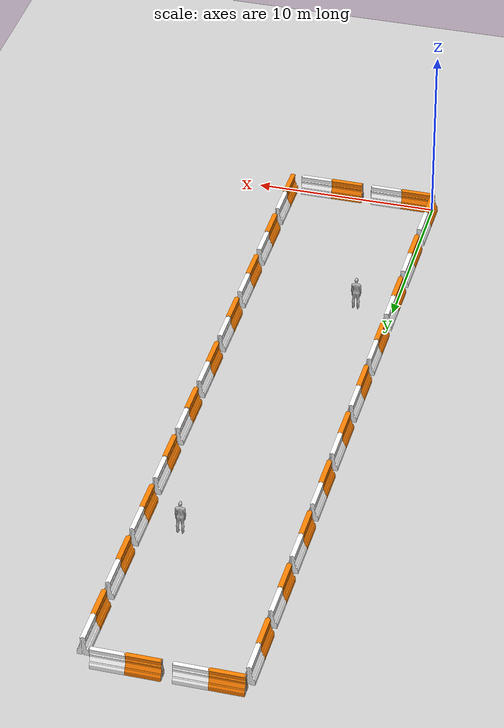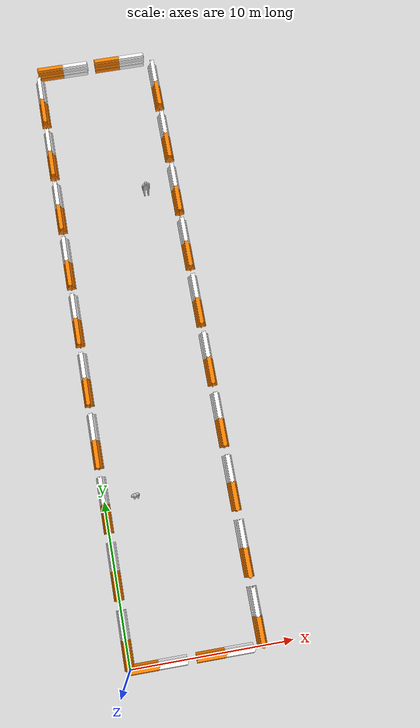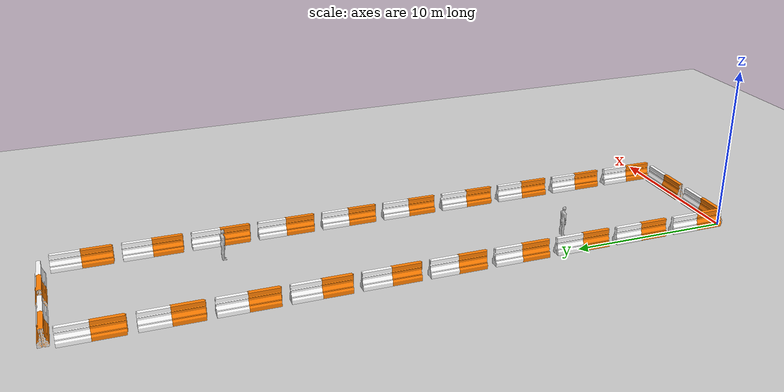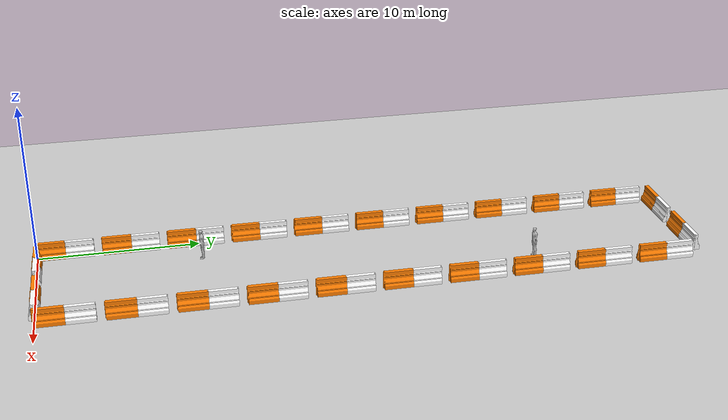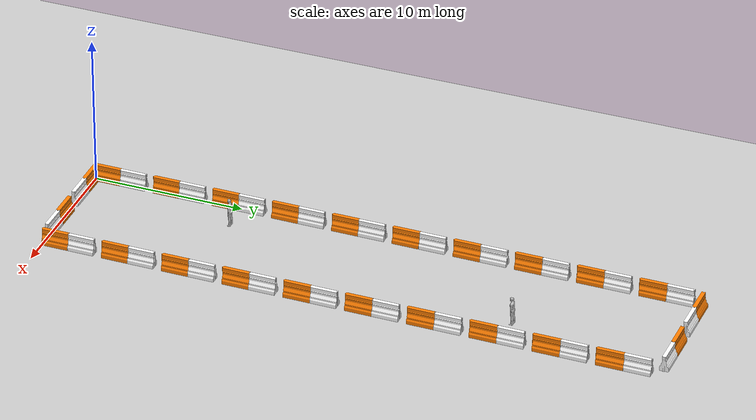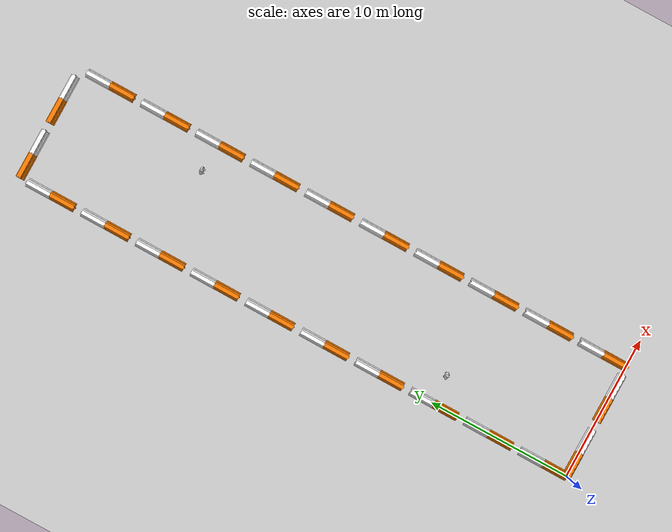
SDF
<sdf version="1.7">
 <world name="default">
  <light name="sun" type="directional">
   <pose>0 0 10 0 -0 0</pose>
   <diffuse>0.8 0.8 0.8 1</diffuse>
   <specular>0.2 0.2 0.2 1</specular>
   <attenuation>
    <range>1000</range>
    <constant>0.9</constant>
    <linear>0.01</linear>
    <quadratic>0.001</quadratic>
   </attenuation>
   <direction>-0.5 0.1 -0.9</direction>
   <spot><inner_angle>0</inner_angle><outer_angle>0</outer_angle><falloff>0</falloff></spot>
  </light>
  <model name="ground_plane">
   <static>1</static>
   <link name="link">
    <collision name="collision">
     <geometry><plane><normal>0 0 1</normal><size>100 100</size></plane></geometry>
     <surface>
      <contact><collide_bitmask>65535</collide_bitmask></contact>
      <friction><ode><mu>100</mu><mu2>50</mu2></ode></friction>
     </surface>
    </collision>
    <visual name="visual">
     <cast_shadows>0</cast_shadows>
     <geometry><plane><normal>0 0 1</normal><size>100 100</size></plane></geometry>
     <material>
      <script><uri>file://media/materials/scripts/gazebo.material</uri><name>Gazebo/Grey</name></script>
     </material>
    </visual>
   </link>
  </model>
  <gravity>0 0 -9.8</gravity>
  <magnetic_field>6e-06 2.3e-05 -4.2e-05</magnetic_field>
  <atmosphere type="adiabatic"/>
  <physics type="ode">
   <max_step_size>0.001</max_step_size>
   <real_time_factor>1</real_time_factor>
   <real_time_update_rate>1000</real_time_update_rate>
  </physics>
  <scene><ambient>0.4 0.4 0.4 1</ambient><background>0.7 0.7 0.7 1</background><shadows>1</shadows></scene>
  <spherical_coordinates>
   <surface_model>EARTH_WGS84</surface_model>
   <latitude_deg>0</latitude_deg>
   <longitude_deg>0</longitude_deg>
   <elevation>0</elevation>
   <heading_deg>0</heading_deg>
  </spherical_coordinates>
  <model name="object_0">
   <static>1</static>
   <link name="link">
    <visual name="visual">
     <geometry>
      <mesh><uri>model://drc_practice_orange_jersey_barrier/meshes/jersey_barrier.dae</uri></mesh>
     </geometry>
    </visual>
    <collision name="collision">
     <geometry>
      <mesh><uri>model://drc_practice_orange_jersey_barrier/meshes/jersey_barrier.dae</uri></mesh>
     </geometry>
    </collision>
   </link>
   <pose>0 0.87 0 0 -0 0</pose>
  </model>
  <model name="object_1">
   <static>1</static>
   <link name="link">
    <visual name="visual">
     <geometry>
      <mesh><uri>model://drc_practice_white_jersey_barrier/meshes/jersey_barrier.dae</uri></mesh>
     </geometry>
    </visual>
    <collision name="collision">
     <geometry>
      <mesh><uri>model://drc_practice_white_jersey_barrier/meshes/jersey_barrier.dae</uri></mesh>
     </geometry>
    </collision>
   </link>
   <pose>0 2.61 0 0 -0 0</pose>
  </model>
  <model name="object_3">
   <static>1</static>
   <link name="link">
    <visual name="visual">
     <geometry>
      <mesh><uri>model://drc_practice_orange_jersey_barrier/meshes/jersey_barrier.dae</uri></mesh>
     </geometry>
    </visual>
    <collision name="collision">
     <geometry>
      <mesh><uri>model://drc_practice_orange_jersey_barrier/meshes/jersey_barrier.dae</uri></mesh>
     </geometry>
    </collision>
   </link>
   <pose>0 4.91 0 0 -0 0</pose>
  </model>
  <model name="object_4">
   <static>1</static>
   <link name="link">
    <visual name="visual">
     <geometry>
      <mesh><uri>model://drc_practice_white_jersey_barrier/meshes/jersey_barrier.dae</uri></mesh>
     </geometry>
    </visual>
    <collision name="collision">
     <geometry>
      <mesh><uri>model://drc_practice_white_jersey_barrier/meshes/jersey_barrier.dae</uri></mesh>
     </geometry>
    </collision>
   </link>
   <pose>0 6.65 0 0 -0 0</pose>
  </model>
  <model name="object_6">
   <static>1</static>
   <link name="link">
    <visual name="visual">
     <geometry>
      <mesh><uri>model://drc_practice_orange_jersey_barrier/meshes/jersey_barrier.dae</uri></mesh>
     </geometry>
    </visual>
    <collision name="collision">
     <geometry>
      <mesh><uri>model://drc_practice_orange_jersey_barrier/meshes/jersey_barrier.dae</uri></mesh>
     </geometry>
    </collision>
   </link>
   <pose>0 8.95 0 0 -0 0</pose>
  </model>
  <model name="object_7">
   <static>1</static>
   <link name="link">
    <visual name="visual">
     <geometry>
      <mesh><uri>model://drc_practice_white_jersey_barrier/meshes/jersey_barrier.dae</uri></mesh>
     </geometry>
    </visual>
    <collision name="collision">
     <geometry>
      <mesh><uri>model://drc_practice_white_jersey_barrier/meshes/jersey_barrier.dae</uri></mesh>
     </geometry>
    </collision>
   </link>
   <pose>0 10.69 0 0 -0 0</pose>
  </model>
  <model name="object_9">
   <static>1</static>
   <link name="link">
    <visual name="visual">
     <geometry>
      <mesh><uri>model://drc_practice_orange_jersey_barrier/meshes/jersey_barrier.dae</uri></mesh>
     </geometry>
    </visual>
    <collision name="collision">
     <geometry>
      <mesh><uri>model://drc_practice_orange_jersey_barrier/meshes/jersey_barrier.dae</uri></mesh>
     </geometry>
    </collision>
   </link>
   <pose>0 12.99 0 0 -0 0</pose>
  </model>
  <model name="object_10">
   <static>1</static>
   <link name="link">
    <visual name="visual">
     <geometry>
      <mesh><uri>model://drc_practice_white_jersey_barrier/meshes/jersey_barrier.dae</uri></mesh>
     </geometry>
    </visual>
    <collision name="collision">
     <geometry>
      <mesh><uri>model://drc_practice_white_jersey_barrier/meshes/jersey_barrier.dae</uri></mesh>
     </geometry>
    </collision>
   </link>
   <pose>0 14.73 0 0 -0 0</pose>
  </model>
  <model name="object_12">
   <static>1</static>
   <link name="link">
    <visual name="visual">
     <geometry>
      <mesh><uri>model://drc_practice_orange_jersey_barrier/meshes/jersey_barrier.dae</uri></mesh>
     </geometry>
    </visual>
    <collision name="collision">
     <geometry>
      <mesh><uri>model://drc_practice_orange_jersey_barrier/meshes/jersey_barrier.dae</uri></mesh>
     </geometry>
    </collision>
   </link>
   <pose>0 17.03 0 0 -0 0</pose>
  </model>
  <model name="object_13">
   <static>1</static>
   <link name="link">
    <visual name="visual">
     <geometry>
      <mesh><uri>model://drc_practice_white_jersey_barrier/meshes/jersey_barrier.dae</uri></mesh>
     </geometry>
    </visual>
    <collision name="collision">
     <geometry>
      <mesh><uri>model://drc_practice_white_jersey_barrier/meshes/jersey_barrier.dae</uri></mesh>
     </geometry>
    </collision>
   </link>
   <pose>0 18.77 0 0 -0 0</pose>
  </model>
  <model name="object_15">
   <static>1</static>
   <link name="link">
    <visual name="visual">
     <geometry>
      <mesh><uri>model://drc_practice_orange_jersey_barrier/meshes/jersey_barrier.dae</uri></mesh>
     </geometry>
    </visual>
    <collision name="collision">
     <geometry>
      <mesh><uri>model://drc_practice_orange_jersey_barrier/meshes/jersey_barrier.dae</uri></mesh>
     </geometry>
    </collision>
   </link>
   <pose>0 21.07 0 0 -0 0</pose>
  </model>
  <model name="object_16">
   <static>1</static>
   <link name="link">
    <visual name="visual">
     <geometry>
      <mesh><uri>model://drc_practice_white_jersey_barrier/meshes/jersey_barrier.dae</uri></mesh>
     </geometry>
    </visual>
    <collision name="collision">
     <geometry>
      <mesh><uri>model://drc_practice_white_jersey_barrier/meshes/jersey_barrier.dae</uri></mesh>
     </geometry>
    </collision>
   </link>
   <pose>0 22.81 0 0 -0 0</pose>
  </model>
  <model name="object_18">
   <static>1</static>
   <link name="link">
    <visual name="visual">
     <geometry>
      <mesh><uri>model://drc_practice_orange_jersey_barrier/meshes/jersey_barrier.dae</uri></mesh>
     </geometry>
    </visual>
    <collision name="collision">
     <geometry>
      <mesh><uri>model://drc_practice_orange_jersey_barrier/meshes/jersey_barrier.dae</uri></mesh>
     </geometry>
    </collision>
   </link>
   <pose>0 25.11 0 0 -0 0</pose>
  </model>
  <model name="object_19">
   <static>1</static>
   <link name="link">
    <visual name="visual">
     <geometry>
      <mesh><uri>model://drc_practice_white_jersey_barrier/meshes/jersey_barrier.dae</uri></mesh>
     </geometry>
    </visual>
    <collision name="collision">
     <geometry>
      <mesh><uri>model://drc_practice_white_jersey_barrier/meshes/jersey_barrier.dae</uri></mesh>
     </geometry>
    </collision>
   </link>
   <pose>0 26.85 0 0 -0 0</pose>
  </model>
  <model name="object_21">
   <static>1</static>
   <link name="link">
    <visual name="visual">
     <geometry>
      <mesh><uri>model://drc_practice_orange_jersey_barrier/meshes/jersey_barrier.dae</uri></mesh>
     </geometry>
    </visual>
    <collision name="collision">
     <geometry>
      <mesh><uri>model://drc_practice_orange_jersey_barrier/meshes/jersey_barrier.dae</uri></mesh>
     </geometry>
    </collision>
   </link>
   <pose>0 29.15 0 0 -0 0</pose>
  </model>
  <model name="object_22">
   <static>1</static>
   <link name="link">
    <visual name="visual">
     <geometry>
      <mesh><uri>model://drc_practice_white_jersey_barrier/meshes/jersey_barrier.dae</uri></mesh>
     </geometry>
    </visual>
    <collision name="collision">
     <geometry>
      <mesh><uri>model://drc_practice_white_jersey_barrier/meshes/jersey_barrier.dae</uri></mesh>
     </geometry>
    </collision>
   </link>
   <pose>0 30.89 0 0 -0 0</pose>
  </model>
  <model name="object_24">
   <static>1</static>
   <link name="link">
    <visual name="visual">
     <geometry>
      <mesh><uri>model://drc_practice_orange_jersey_barrier/meshes/jersey_barrier.dae</uri></mesh>
     </geometry>
    </visual>
    <collision name="collision">
     <geometry>
      <mesh><uri>model://drc_practice_orange_jersey_barrier/meshes/jersey_barrier.dae</uri></mesh>
     </geometry>
    </collision>
   </link>
   <pose>0 33.19 0 0 -0 0</pose>
  </model>
  <model name="object_25">
   <static>1</static>
   <link name="link">
    <visual name="visual">
     <geometry>
      <mesh><uri>model://drc_practice_white_jersey_barrier/meshes/jersey_barrier.dae</uri></mesh>
     </geometry>
    </visual>
    <collision name="collision">
     <geometry>
      <mesh><uri>model://drc_practice_white_jersey_barrier/meshes/jersey_barrier.dae</uri></mesh>
     </geometry>
    </collision>
   </link>
   <pose>0 34.93 0 0 -0 0</pose>
  </model>
  <model name="object_27">
   <static>1</static>
   <link name="link">
    <visual name="visual">
     <geometry>
      <mesh><uri>model://drc_practice_orange_jersey_barrier/meshes/jersey_barrier.dae</uri></mesh>
     </geometry>
    </visual>
    <collision name="collision">
     <geometry>
      <mesh><uri>model://drc_practice_orange_jersey_barrier/meshes/jersey_barrier.dae</uri></mesh>
     </geometry>
    </collision>
   </link>
   <pose>0 37.23 0 0 -0 0</pose>
  </model>
  <model name="object_28">
   <static>1</static>
   <link name="link">
    <visual name="visual">
     <geometry>
      <mesh><uri>model://drc_practice_white_jersey_barrier/meshes/jersey_barrier.dae</uri></mesh>
     </geometry>
    </visual>
    <collision name="collision">
     <geometry>
      <mesh><uri>model://drc_practice_white_jersey_barrier/meshes/jersey_barrier.dae</uri></mesh>
     </geometry>
    </collision>
   </link>
   <pose>0 38.97 0 0 -0 0</pose>
  </model>
  <model name="object_30">
   <static>1</static>
   <link name="link">
    <visual name="visual">
     <geometry>
      <mesh><uri>model://drc_practice_orange_jersey_barrier/meshes/jersey_barrier.dae</uri></mesh>
     </geometry>
    </visual>
    <collision name="collision">
     <geometry>
      <mesh><uri>model://drc_practice_orange_jersey_barrier/meshes/jersey_barrier.dae</uri></mesh>
     </geometry>
    </collision>
   </link>
   <pose>8.08 0.87 0 0 -0 0</pose>
  </model>
  <model name="object_31">
   <static>1</static>
   <link name="link">
    <visual name="visual">
     <geometry>
      <mesh><uri>model://drc_practice_white_jersey_barrier/meshes/jersey_barrier.dae</uri></mesh>
     </geometry>
    </visual>
    <collision name="collision">
     <geometry>
      <mesh><uri>model://drc_practice_white_jersey_barrier/meshes/jersey_barrier.dae</uri></mesh>
     </geometry>
    </collision>
   </link>
   <pose>8.08 2.61 0 0 -0 0</pose>
  </model>
  <model name="object_33">
   <static>1</static>
   <link name="link">
    <visual name="visual">
     <geometry>
      <mesh><uri>model://drc_practice_orange_jersey_barrier/meshes/jersey_barrier.dae</uri></mesh>
     </geometry>
    </visual>
    <collision name="collision">
     <geometry>
      <mesh><uri>model://drc_practice_orange_jersey_barrier/meshes/jersey_barrier.dae</uri></mesh>
     </geometry>
    </collision>
   </link>
   <pose>8.08 4.91 0 0 -0 0</pose>
  </model>
  <model name="object_34">
   <static>1</static>
   <link name="link">
    <visual name="visual">
     <geometry>
      <mesh><uri>model://drc_practice_white_jersey_barrier/meshes/jersey_barrier.dae</uri></mesh>
     </geometry>
    </visual>
    <collision name="collision">
     <geometry>
      <mesh><uri>model://drc_practice_white_jersey_barrier/meshes/jersey_barrier.dae</uri></mesh>
     </geometry>
    </collision>
   </link>
   <pose>8.08 6.65 0 0 -0 0</pose>
  </model>
  <model name="object_36">
   <static>1</static>
   <link name="link">
    <visual name="visual">
     <geometry>
      <mesh><uri>model://drc_practice_orange_jersey_barrier/meshes/jersey_barrier.dae</uri></mesh>
     </geometry>
    </visual>
    <collision name="collision">
     <geometry>
      <mesh><uri>model://drc_practice_orange_jersey_barrier/meshes/jersey_barrier.dae</uri></mesh>
     </geometry>
    </collision>
   </link>
   <pose>8.08 8.95 0 0 -0 0</pose>
  </model>
  <model name="object_37">
   <static>1</static>
   <link name="link">
    <visual name="visual">
     <geometry>
      <mesh><uri>model://drc_practice_white_jersey_barrier/meshes/jersey_barrier.dae</uri></mesh>
     </geometry>
    </visual>
    <collision name="collision">
     <geometry>
      <mesh><uri>model://drc_practice_white_jersey_barrier/meshes/jersey_barrier.dae</uri></mesh>
     </geometry>
    </collision>
   </link>
   <pose>8.08 10.69 0 0 -0 0</pose>
  </model>
  <model name="object_39">
   <static>1</static>
   <link name="link">
    <visual name="visual">
     <geometry>
      <mesh><uri>model://drc_practice_orange_jersey_barrier/meshes/jersey_barrier.dae</uri></mesh>
     </geometry>
    </visual>
    <collision name="collision">
     <geometry>
      <mesh><uri>model://drc_practice_orange_jersey_barrier/meshes/jersey_barrier.dae</uri></mesh>
     </geometry>
    </collision>
   </link>
   <pose>8.08 12.99 0 0 -0 0</pose>
  </model>
  <model name="object_40">
   <static>1</static>
   <link name="link">
    <visual name="visual">
     <geometry>
      <mesh><uri>model://drc_practice_white_jersey_barrier/meshes/jersey_barrier.dae</uri></mesh>
     </geometry>
    </visual>
    <collision name="collision">
     <geometry>
      <mesh><uri>model://drc_practice_white_jersey_barrier/meshes/jersey_barrier.dae</uri></mesh>
     </geometry>
    </collision>
   </link>
   <pose>8.08 14.73 0 0 -0 0</pose>
  </model>
  <model name="object_42">
   <static>1</static>
   <link name="link">
    <visual name="visual">
     <geometry>
      <mesh><uri>model://drc_practice_orange_jersey_barrier/meshes/jersey_barrier.dae</uri></mesh>
     </geometry>
    </visual>
    <collision name="collision">
     <geometry>
      <mesh><uri>model://drc_practice_orange_jersey_barrier/meshes/jersey_barrier.dae</uri></mesh>
     </geometry>
    </collision>
   </link>
   <pose>8.08 17.03 0 0 -0 0</pose>
  </model>
  <model name="object_43">
   <static>1</static>
   <link name="link">
    <visual name="visual">
     <geometry>
      <mesh><uri>model://drc_practice_white_jersey_barrier/meshes/jersey_barrier.dae</uri></mesh>
     </geometry>
    </visual>
    <collision name="collision">
     <geometry>
      <mesh><uri>model://drc_practice_white_jersey_barrier/meshes/jersey_barrier.dae</uri></mesh>
     </geometry>
    </collision>
   </link>
   <pose>8.08 18.77 0 0 -0 0</pose>
  </model>
  <model name="object_45">
   <static>1</static>
   <link name="link">
    <visual name="visual">
     <geometry>
      <mesh><uri>model://drc_practice_orange_jersey_barrier/meshes/jersey_barrier.dae</uri></mesh>
     </geometry>
    </visual>
    <collision name="collision">
     <geometry>
      <mesh><uri>model://drc_practice_orange_jersey_barrier/meshes/jersey_barrier.dae</uri></mesh>
     </geometry>
    </collision>
   </link>
   <pose>8.08 21.07 0 0 -0 0</pose>
  </model>
  <model name="object_46">
   <static>1</static>
   <link name="link">
    <visual name="visual">
     <geometry>
      <mesh><uri>model://drc_practice_white_jersey_barrier/meshes/jersey_barrier.dae</uri></mesh>
     </geometry>
    </visual>
    <collision name="collision">
     <geometry>
      <mesh><uri>model://drc_practice_white_jersey_barrier/meshes/jersey_barrier.dae</uri></mesh>
     </geometry>
    </collision>
   </link>
   <pose>8.08 22.81 0 0 -0 0</pose>
  </model>
  <model name="object_48">
   <static>1</static>
   <link name="link">
    <visual name="visual">
     <geometry>
      <mesh><uri>model://drc_practice_orange_jersey_barrier/meshes/jersey_barrier.dae</uri></mesh>
     </geometry>
    </visual>
    <collision name="collision">
     <geometry>
      <mesh><uri>model://drc_practice_orange_jersey_barrier/meshes/jersey_barrier.dae</uri></mesh>
     </geometry>
    </collision>
   </link>
   <pose>8.08 25.11 0 0 -0 0</pose>
  </model>
  <model name="object_49">
   <static>1</static>
   <link name="link">
    <visual name="visual">
     <geometry>
      <mesh><uri>model://drc_practice_white_jersey_barrier/meshes/jersey_barrier.dae</uri></mesh>
     </geometry>
    </visual>
    <collision name="collision">
     <geometry>
      <mesh><uri>model://drc_practice_white_jersey_barrier/meshes/jersey_barrier.dae</uri></mesh>
     </geometry>
    </collision>
   </link>
   <pose>8.08 26.85 0 0 -0 0</pose>
  </model>
  <model name="object_51">
   <static>1</static>
   <link name="link">
    <visual name="visual">
     <geometry>
      <mesh><uri>model://drc_practice_orange_jersey_barrier/meshes/jersey_barrier.dae</uri></mesh>
     </geometry>
    </visual>
    <collision name="collision">
     <geometry>
      <mesh><uri>model://drc_practice_orange_jersey_barrier/meshes/jersey_barrier.dae</uri></mesh>
     </geometry>
    </collision>
   </link>
   <pose>8.08 29.15 0 0 -0 0</pose>
  </model>
  <model name="object_52">
   <static>1</static>
   <link name="link">
    <visual name="visual">
     <geometry>
      <mesh><uri>model://drc_practice_white_jersey_barrier/meshes/jersey_barrier.dae</uri></mesh>
     </geometry>
    </visual>
    <collision name="collision">
     <geometry>
      <mesh><uri>model://drc_practice_white_jersey_barrier/meshes/jersey_barrier.dae</uri></mesh>
     </geometry>
    </collision>
   </link>
   <pose>8.08 30.89 0 0 -0 0</pose>
  </model>
  <model name="object_54">
   <static>1</static>
   <link name="link">
    <visual name="visual">
     <geometry>
      <mesh><uri>model://drc_practice_orange_jersey_barrier/meshes/jersey_barrier.dae</uri></mesh>
     </geometry>
    </visual>
    <collision name="collision">
     <geometry>
      <mesh><uri>model://drc_practice_orange_jersey_barrier/meshes/jersey_barrier.dae</uri></mesh>
     </geometry>
    </collision>
   </link>
   <pose>8.08 33.19 0 0 -0 0</pose>
  </model>
  <model name="object_55">
   <static>1</static>
   <link name="link">
    <visual name="visual">
     <geometry>
      <mesh><uri>model://drc_practice_white_jersey_barrier/meshes/jersey_barrier.dae</uri></mesh>
     </geometry>
    </visual>
    <collision name="collision">
     <geometry>
      <mesh><uri>model://drc_practice_white_jersey_barrier/meshes/jersey_barrier.dae</uri></mesh>
     </geometry>
    </collision>
   </link>
   <pose>8.08 34.93 0 0 -0 0</pose>
  </model>
  <model name="object_57">
   <static>1</static>
   <link name="link">
    <visual name="visual">
     <geometry>
      <mesh><uri>model://drc_practice_orange_jersey_barrier/meshes/jersey_barrier.dae</uri></mesh>
     </geometry>
    </visual>
    <collision name="collision">
     <geometry>
      <mesh><uri>model://drc_practice_orange_jersey_barrier/meshes/jersey_barrier.dae</uri></mesh>
     </geometry>
    </collision>
   </link>
   <pose>8.08 37.23 0 0 -0 0</pose>
  </model>
  <model name="object_58">
   <static>1</static>
   <link name="link">
    <visual name="visual">
     <geometry>
      <mesh><uri>model://drc_practice_white_jersey_barrier/meshes/jersey_barrier.dae</uri></mesh>
     </geometry>
    </visual>
    <collision name="collision">
     <geometry>
      <mesh><uri>model://drc_practice_white_jersey_barrier/meshes/jersey_barrier.dae</uri></mesh>
     </geometry>
    </collision>
   </link>
   <pose>8.08 38.97 0 0 -0 0</pose>
  </model>
  <model name="object_60">
   <static>1</static>
   <link name="link">
    <visual name="visual">
     <geometry>
      <mesh><uri>model://drc_practice_orange_jersey_barrier/meshes/jersey_barrier.dae</uri></mesh>
     </geometry>
    </visual>
    <collision name="collision">
     <geometry>
      <mesh><uri>model://drc_practice_orange_jersey_barrier/meshes/jersey_barrier.dae</uri></mesh>
     </geometry>
    </collision>
   </link>
   <pose>0.87 0 0 0 -0 1.5708</pose>
  </model>
  <model name="object_61">
   <static>1</static>
   <link name="link">
    <visual name="visual">
     <geometry>
      <mesh><uri>model://drc_practice_white_jersey_barrier/meshes/jersey_barrier.dae</uri></mesh>
     </geometry>
    </visual>
    <collision name="collision">
     <geometry>
      <mesh><uri>model://drc_practice_white_jersey_barrier/meshes/jersey_barrier.dae</uri></mesh>
     </geometry>
    </collision>
   </link>
   <pose>2.61 0 0 0 -0 1.5708</pose>
  </model>
  <model name="object_63">
   <static>1</static>
   <link name="link">
    <visual name="visual">
     <geometry>
      <mesh><uri>model://drc_practice_orange_jersey_barrier/meshes/jersey_barrier.dae</uri></mesh>
     </geometry>
    </visual>
    <collision name="collision">
     <geometry>
      <mesh><uri>model://drc_practice_orange_jersey_barrier/meshes/jersey_barrier.dae</uri></mesh>
     </geometry>
    </collision>
   </link>
   <pose>4.91 0 0 0 -0 1.5708</pose>
  </model>
  <model name="object_64">
   <static>1</static>
   <link name="link">
    <visual name="visual">
     <geometry>
      <mesh><uri>model://drc_practice_white_jersey_barrier/meshes/jersey_barrier.dae</uri></mesh>
     </geometry>
    </visual>
    <collision name="collision">
     <geometry>
      <mesh><uri>model://drc_practice_white_jersey_barrier/meshes/jersey_barrier.dae</uri></mesh>
     </geometry>
    </collision>
   </link>
   <pose>6.65 0 0 0 -0 1.5708</pose>
  </model>
  <model name="object_66">
   <static>1</static>
   <link name="link">
    <visual name="visual">
     <geometry>
      <mesh><uri>model://drc_practice_orange_jersey_barrier/meshes/jersey_barrier.dae</uri></mesh>
     </geometry>
    </visual>
    <collision name="collision">
     <geometry>
      <mesh><uri>model://drc_practice_orange_jersey_barrier/meshes/jersey_barrier.dae</uri></mesh>
     </geometry>
    </collision>
   </link>
   <pose>0.87 40.4 0 0 -0 1.5708</pose>
  </model>
  <model name="object_67">
   <static>1</static>
   <link name="link">
    <visual name="visual">
     <geometry>
      <mesh><uri>model://drc_practice_white_jersey_barrier/meshes/jersey_barrier.dae</uri></mesh>
     </geometry>
    </visual>
    <collision name="collision">
     <geometry>
      <mesh><uri>model://drc_practice_white_jersey_barrier/meshes/jersey_barrier.dae</uri></mesh>
     </geometry>
    </collision>
   </link>
   <pose>2.61 40.4 0 0 -0 1.5708</pose>
  </model>
  <model name="object_69">
   <static>1</static>
   <link name="link">
    <visual name="visual">
     <geometry>
      <mesh><uri>model://drc_practice_orange_jersey_barrier/meshes/jersey_barrier.dae</uri></mesh>
     </geometry>
    </visual>
    <collision name="collision">
     <geometry>
      <mesh><uri>model://drc_practice_orange_jersey_barrier/meshes/jersey_barrier.dae</uri></mesh>
     </geometry>
    </collision>
   </link>
   <pose>4.91 40.4 0 0 -0 1.5708</pose>
  </model>
  <model name="object_70">
   <static>1</static>
   <link name="link">
    <visual name="visual">
     <geometry>
      <mesh><uri>model://drc_practice_white_jersey_barrier/meshes/jersey_barrier.dae</uri></mesh>
     </geometry>
    </visual>
    <collision name="collision">
     <geometry>
      <mesh><uri>model://drc_practice_white_jersey_barrier/meshes/jersey_barrier.dae</uri></mesh>
     </geometry>
    </collision>
   </link>
   <pose>6.65 40.4 0 0 -0 1.5708</pose>
  </model>
  <model name="object_72">
   <link name="link">
    <inertial>
     <pose>0 -0.1 0.95 0 -0 0</pose>
     <mass>80</mass>
     <inertia><ixx>24.88</ixx><ixy>0</ixy><ixz>0</ixz><iyy>25.73</iyy><iyz>0</iyz><izz>2.48</izz></inertia>
    </inertial>
    <collision name="bottom">
     <pose>0 -0.1 0.01 0 -0 0</pose>
     <geometry><box><size>0.5 0.35 0.02</size></box></geometry>
    </collision>
    <collision name="person">
     <pose>0 0 0.02 0.04 -0 0</pose>
     <geometry><mesh><uri>model://person_standing/meshes/standing.dae</uri></mesh></geometry>
    </collision>
    <visual name="visual">
     <pose>0 0 0.02 0.04 -0 0</pose>
     <geometry><mesh><uri>model://person_standing/meshes/standing.dae</uri></mesh></geometry>
    </visual>
   </link>
   <pose>2.02002 10.1 0 -1e-06 1e-06 -0.000163</pose>
  </model>
  <model name="object_73">
   <link name="link">
    <inertial>
     <pose>0 -0.1 0.95 0 -0 0</pose>
     <mass>80</mass>
     <inertia><ixx>24.88</ixx><ixy>0</ixy><ixz>0</ixz><iyy>25.73</iyy><iyz>0</iyz><izz>2.48</izz></inertia>
    </inertial>
    <collision name="bottom">
     <pose>0 -0.1 0.01 0 -0 0</pose>
     <geometry><box><size>0.5 0.35 0.02</size></box></geometry>
    </collision>
    <collision name="person">
     <pose>0 0 0.02 0.04 -0 0</pose>
     <geometry><mesh><uri>model://person_standing/meshes/standing.dae</uri></mesh></geometry>
    </collision>
    <visual name="visual">
     <pose>0 0 0.02 0.04 -0 0</pose>
     <geometry><mesh><uri>model://person_standing/meshes/standing.dae</uri></mesh></geometry>
    </visual>
   </link>
   <pose>6.06001 30.3 -0 -1e-06 1e-06 -0.000133</pose>
  </model>
 </world>
</sdf>
